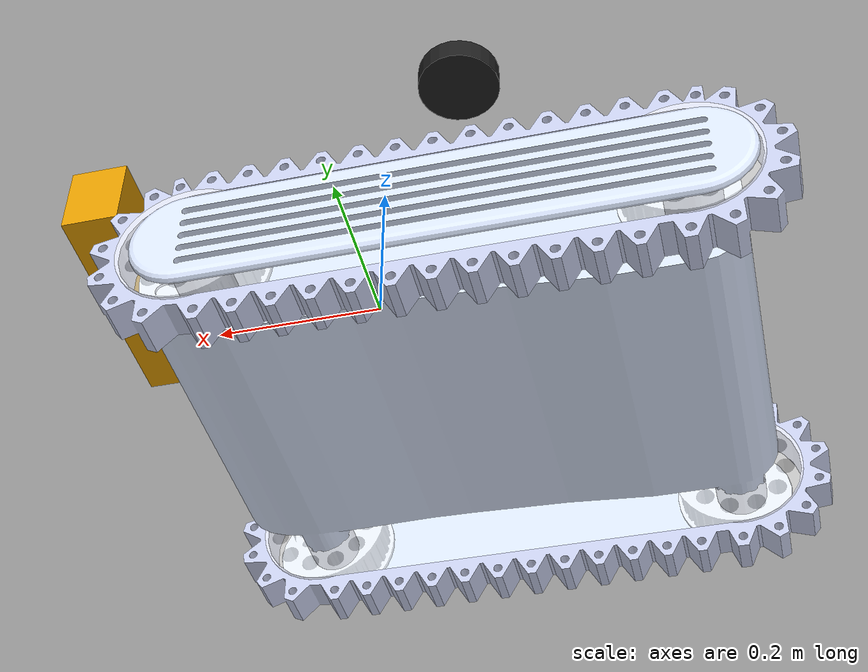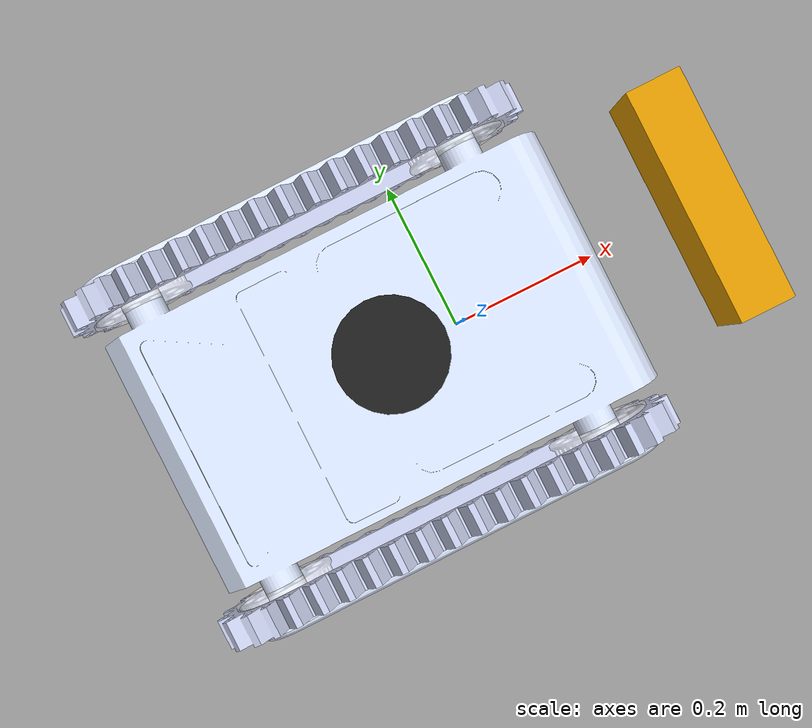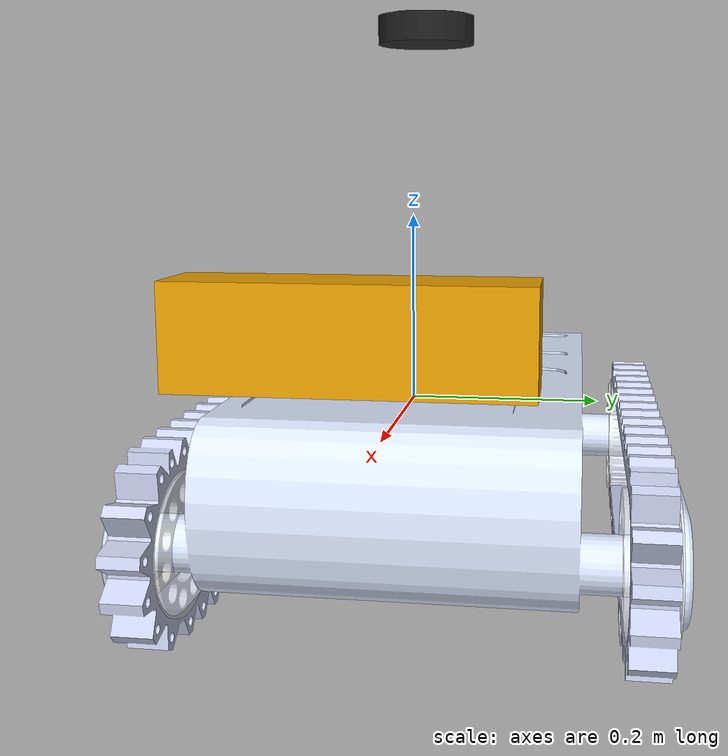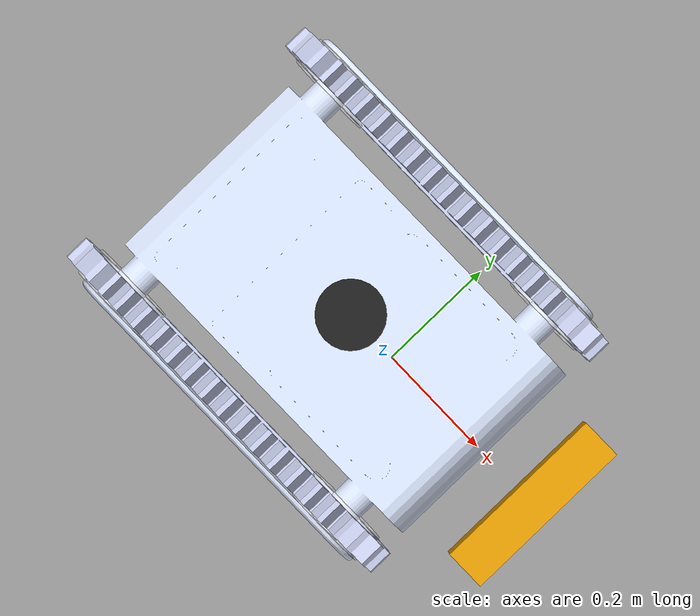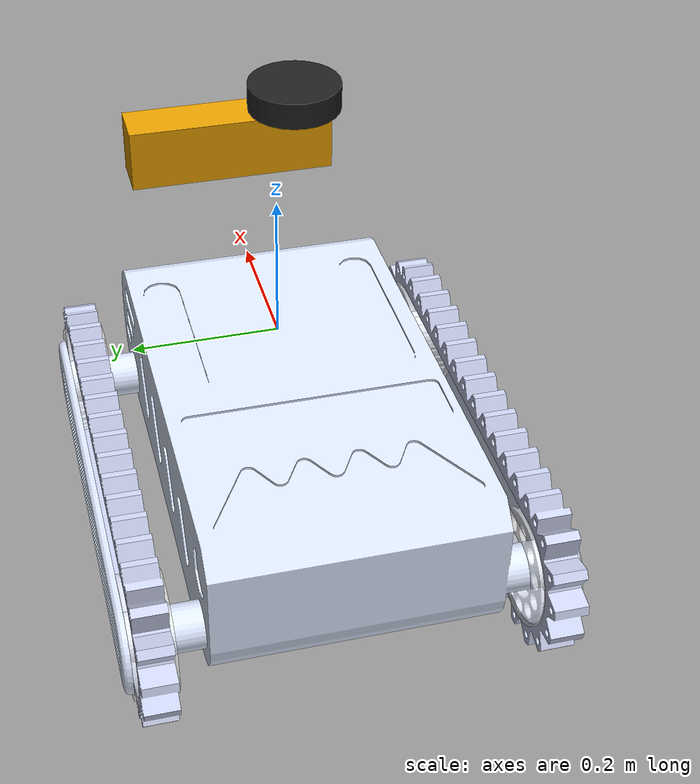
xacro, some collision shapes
<?xml version="1.0" encoding="utf-8"?>
<robot name="test_wheel" xmlns:xacro="http://ros.org/wiki/xacro">
  <xacro:arg name="laser_visual" default="false"/>
  <xacro:arg name="imu_visual"   default="false"/>

  <link name="base_footprint"/>

  <joint name="base_joint" type="fixed">
    <parent link="base_footprint"/>
    <child link="base_link"/>
    <origin xyz="0.17 0.0 0.010" rpy="0 0 0"/>
  </joint>

  <link
    name="base_link">
    <inertial>
      <origin
        xyz="-0.281319738122083 -0.0199999536533712 -0.106159055842674"
        rpy="0 0 0" />
      <mass
        value="12.7192621971354" />
      <inertia
        ixx="0.260102799764317"
        ixy="-0.000909028802490265"
        ixz="-0.0119468599271296"
        iyy="0.57529521161862"
        iyz="0.00212150730981038"
        izz="0.710489639266212" />
    </inertial>
    <visual>
      <origin
        xyz="0 0 0"
        rpy="0 0 0" />
      <geometry>
        <mesh
          filename="package://test_crawler/meshes/base_link.STL" />
      </geometry>
      <material
        name="">
        <color
          rgba="0.866666666666667 0.909803921568627 1 1" />
      </material>
    </visual>
    <collision>
      <origin
        xyz="0 0 0"
        rpy="0 0 0" />
      <geometry>
        <mesh
          filename="package://test_crawler/meshes/base_link.STL" />
      </geometry>
    </collision>
  </link>
  <link
    name="left_front_link">
    <inertial>
      <origin
        xyz="1.5691E-13 -0.022189 1.9851E-13"
        rpy="0 0 0" />
      <mass
        value="0.66982" />
      <inertia
        ixx="0.0011856"
        ixy="-1.9675E-17"
        ixz="5.9152E-18"
        iyy="0.0020612"
        iyz="-2.5304E-17"
        izz="0.0011856" />
    </inertial>
    <visual>
      <origin
        xyz="0 0 0"
        rpy="0 0 0" />
      <geometry>
        <mesh
          filename="package://test_crawler/meshes/left_front_link.STL" />
      </geometry>
      <material
        name="">
        <color
          rgba="1 1 1 0.5" />
      </material>
    </visual>
    <collision>
      <origin
        xyz="0 0 0"
        rpy="0 0 0" />
      <geometry>
        <mesh
          filename="package://test_crawler/meshes/left_front_link.STL" />
      </geometry>
    </collision>
  </link>
  <joint
    name="left_front_joint"
    type="continuous">
    <origin
      xyz="-0.043 0.275 -0.146000000000004"
      rpy="0 0 0" />
    <parent
      link="base_link" />
    <child
      link="left_front_link" />
    <axis
      xyz="0 1 0" />
  </joint>
  <link
    name="right_front_link">
    <inertial>
      <origin
        xyz="-0.010998 0.028811 0.0012827"
        rpy="0 0 0" />
      <mass
        value="0.66982" />
      <inertia
        ixx="0.0011856"
        ixy="-2.6967E-17"
        ixz="5.651E-18"
        iyy="0.0020612"
        iyz="-1.6955E-17"
        izz="0.0011856" />
    </inertial>
    <visual>
      <origin
        xyz="0 0 0"
        rpy="0 0 0" />
      <geometry>
        <mesh
          filename="package://test_crawler/meshes/right_front_link.STL" />
      </geometry>
      <material
        name="">
        <color
          rgba="1 1 1 0.5" />
      </material>
    </visual>
    <collision>
      <origin
        xyz="0 0 0"
        rpy="0 0 0" />
      <geometry>
        <mesh
          filename="package://test_crawler/meshes/right_front_link.STL" />
      </geometry>
    </collision>
  </link>
  <joint
    name="right_front_joint"
    type="continuous">
    <origin
      xyz="-0.0320015790095129 -0.277 -0.147282702389286"
      rpy="0 0 0" />
    <parent
      link="base_link" />
    <child
      link="right_front_link" />
    <axis
      xyz="0 1 0" />
  </joint>
  <link
    name="left_rare_link">
    <inertial>
      <origin
        xyz="2.0828E-13 -0.022189 1.4727E-13"
        rpy="0 0 0" />
      <mass
        value="0.66982" />
      <inertia
        ixx="0.0011856"
        ixy="-2.6335E-17"
        ixz="5.7661E-18"
        iyy="0.0020612"
        iyz="-1.8175E-17"
        izz="0.0011856" />
    </inertial>
    <visual>
      <origin
        xyz="0 0 0"
        rpy="0 0 0" />
      <geometry>
        <mesh
          filename="package://test_crawler/meshes/left_rare_link.STL" />
      </geometry>
      <material
        name="">
        <color
          rgba="1 1 1 0.5" />
      </material>
    </visual>
    <collision>
      <origin
        xyz="0 0 0"
        rpy="0 0 0" />
      <geometry>
        <mesh
          filename="package://test_crawler/meshes/left_rare_link.STL" />
      </geometry>
    </collision>
  </link>
  <joint
    name="left_rare_joint"
    type="continuous">
    <origin
      xyz="-0.553 0.275 -0.146000000000004"
      rpy="0 0 0" />
    <parent
      link="base_link" />
    <child
      link="left_rare_link" />
    <axis
      xyz="0 1 0" />
  </joint>
  <link
    name="right_rare_link">
    <inertial>
      <origin
        xyz="2.0817E-13 0.021811 1.4733E-13"
        rpy="0 0 0" />
      <mass
        value="0.66982" />
      <inertia
        ixx="0.0011856"
        ixy="-2.6202E-17"
        ixz="5.4236E-18"
        iyy="0.0020612"
        iyz="-1.8216E-17"
        izz="0.0011856" />
    </inertial>
    <visual>
      <origin
        xyz="0 0 0"
        rpy="0 0 0" />
      <geometry>
        <mesh
          filename="package://test_crawler/meshes/right_rare_link.STL" />
      </geometry>
      <material
        name="">
        <color
          rgba="1 1 1 0.5" />
      </material>
    </visual>
    <collision>
      <origin
        xyz="0 0 0"
        rpy="0 0 0" />
      <geometry>
        <mesh
          filename="package://test_crawler/meshes/right_rare_link.STL" />
      </geometry>
    </collision>
  </link>
  <joint
    name="right_rare_joint"
    type="continuous">
    <origin
      xyz="-0.553 -0.27 -0.146000000000004"
      rpy="0 0 0" />
    <parent
      link="base_link" />
    <child
      link="right_rare_link" />
    <axis
      xyz="0 1 0" />
  </joint>
  <link
    name="left_belt_link">
    <visual>
      <origin
        xyz="0 0 0"
        rpy="0 0 0" />
      <geometry>
        <mesh
          filename="package://test_crawler/meshes/left_belt_link.STL" />
      </geometry>
      <material
        name="">
        <color
          rgba="0.79216 0.81961 0.93333 1" />
      </material>
    </visual>
  </link>
  <joint
    name="left_belt_joint"
    type="fixed">
    <origin
      xyz="0 0 0"
      rpy="0 0 0" />
    <parent
      link="base_link" />
    <child
      link="left_belt_link" />
    <axis
      xyz="0 0 0" />
  </joint>
  <link
    name="right_belt_link">
    <visual>
      <origin
        xyz="0 0 0"
        rpy="0 0 0" />
      <geometry>
        <mesh
          filename="package://test_crawler/meshes/right_belt_link.STL" />
      </geometry>
      <material
        name="">
        <color
          rgba="0.79216 0.81961 0.93333 1" />
      </material>
    </visual>
  </link>
  <joint
    name="right_belt_joint"
    type="fixed">
    <origin
      xyz="0 0 0"
      rpy="0 0 0" />
    <parent
      link="base_link" />
    <child
      link="right_belt_link" />
    <axis
      xyz="0 0 0" />
  </joint>

    <link name="kinect_link">
        <visual>
            <origin xyz="-0.18 0 -0.08" rpy="0 0 1.5708"/>
            <geometry>
                <mesh filename="package://mbot_description/meshes/kinect.dae" />
            </geometry>
        </visual>
        <collision>
            <geometry>
                <box size="0.07 0.3 0.09"/>
            </geometry>
        </collision>
    </link>

    <joint name="kinect_joint" type="fixed">
        <origin xyz="0.15 0 0.11" rpy="0 0 0"/>
        <parent link="base_link"/>
        <child link="kinect_link"/>
    </joint>

    <joint name="kinect_optical_joint" type="fixed">
        <origin xyz="-0.18 0 -0.08" rpy="-1.5708 0 -1.5708"/>
        <parent link="kinect_link"/>
        <child link="kinect_frame_optical"/>
    </joint>

    <link name="kinect_frame_optical"/>

<joint name="scan_joint" type="fixed">
    <parent link="base_link"/>
    <child link="base_scan"/>
    <origin xyz="-0.282 0 0.402" rpy="0 0 0"/>
  </joint>

  <link name="base_scan">
    <visual>
      <origin xyz="0 0 0.0" rpy="0 0 0"/>
      <geometry>
        <mesh filename="package://multi_turtlebots_sim/turtlebot3_description/meshes/sensors/lds.stl" scale="0.001 0.001 0.001"/>
      </geometry>
      <material name="dark"/>
    </visual>

    <collision>
      <origin xyz="0.015 0 -0.0065" rpy="0 0 0"/>
      <geometry>
        <cylinder length="0.0315" radius="0.055"/>
      </geometry>
    </collision>

    <inertial>
      <mass value="0.114" />
      <origin xyz="0 0 0" />
      <inertia ixx="0.001" ixy="0.0" ixz="0.0"
               iyy="0.001" iyz="0.0"
               izz="0.001" />
    </inertial>
  </link>

  <joint name="imu_joint" type="fixed">
    <parent link="base_link"/>
    <child link="imu_link"/>
    <origin xyz="-0.032 0 0.068" rpy="0 0 0"/>
  </joint>

  <link name="imu_link"/>

  <transmission name="right_front_joint_transmssion">
    <type>transmission_interface/SimpleTransmission</type>
    <joint name="right_front_joint">
      <hardwareInterface>hardware_interface/VelocityJointInterface</hardwareInterface>
    </joint>
    <actuator name="right_front_joint_motor">
      <hardwareInterface>hardware_interface/VelocityJointInterface</hardwareInterface>
      <mechanicalReduction>1</mechanicalReduction>
    </actuator>
  </transmission>
  <transmission name="right_rear_joint_transmssion">
    <type>transmission_interface/SimpleTransmission</type>
    <joint name="right_rear_joint">
      <hardwareInterface>hardware_interface/EffortJointInterface</hardwareInterface>
    </joint>
    <actuator name="right_rear_joint_motor">
      <hardwareInterface>hardware_interface/EffortJointInterface</hardwareInterface>
      <mechanicalReduction>1</mechanicalReduction>
    </actuator>
  </transmission>
  <transmission name="left_front_joint_transmssion">
    <type>transmission_interface/SimpleTransmission</type>
    <joint name="left_front_joint">
      <hardwareInterface>hardware_interface/EffortJointInterface</hardwareInterface>
    </joint>
    <actuator name="left_front_joint_motor">
      <hardwareInterface>hardware_interface/EffortJointInterface</hardwareInterface>
      <mechanicalReduction>1</mechanicalReduction>
    </actuator>
  </transmission>
  <transmission name="left_rear_joint_transmssion">
    <type>transmission_interface/SimpleTransmission</type>
    <joint name="left_rear_joint">
      <hardwareInterface>hardware_interface/EffortJointInterface</hardwareInterface>
    </joint>
    <actuator name="left_rear_joint_motor">
      <hardwareInterface>hardware_interface/EffortJointInterface</hardwareInterface>
      <mechanicalReduction>1</mechanicalReduction>
    </actuator>
  </transmission>

    <gazebo>
        <plugin name="differential_drive_controller"
                filename="libgazebo_ros_diff_drive.so">
            <rosDebugLevel>Debug</rosDebugLevel>
            <publishWheelTF>false</publishWheelTF>
            <publishTf>1</publishTf>
            <publishWheelJointState>true</publishWheelJointState>
            <alwaysOn>true</alwaysOn>
            <updateRate>100.0</updateRate>
            <legacyMode>true</legacyMode>
            <leftJoint>left_front_joint</leftJoint>
            <rightJoint>right_front_joint</rightJoint>
            <wheelSeparation>0.51</wheelSeparation>
            <wheelDiameter>0.15</wheelDiameter>
            <broadcastTF>1</broadcastTF>
            <wheelTorque>30</wheelTorque>
            <wheelAcceleration>1.8</wheelAcceleration>
            <commandTopic>cmd_vel</commandTopic>
            <odometryFrame>odom</odometryFrame>
            <odometryTopic>odom</odometryTopic>
            <robotBaseFrame>base_footprint</robotBaseFrame>
        </plugin>
    </gazebo>

    <gazebo>
        <plugin name="differential_drive_controller"
                filename="libgazebo_ros_diff_drive.so">
            <rosDebugLevel>Debug</rosDebugLevel>
            <publishWheelTF>false</publishWheelTF>
            <publishTf>1</publishTf>
            <publishWheelJointState>true</publishWheelJointState>
            <alwaysOn>true</alwaysOn>
            <updateRate>100.0</updateRate>
            <legacyMode>true</legacyMode>
            <leftJoint>left_rare_joint</leftJoint>
            <rightJoint>right_rare_joint</rightJoint>
            <wheelSeparation>0.51</wheelSeparation>
            <wheelDiameter>0.15</wheelDiameter>
            <broadcastTF>1</broadcastTF>
            <wheelTorque>30</wheelTorque>
            <wheelAcceleration>1.8</wheelAcceleration>
            <commandTopic>cmd_vel</commandTopic>
            <odometryFrame>odom</odometryFrame>
            <odometryTopic>odom</odometryTopic>
            <robotBaseFrame>base_footprint</robotBaseFrame>
        </plugin>
    </gazebo>

    <gazebo reference="kinect_link">
        <sensor type="depth" name="kinect">
            <always_on>true</always_on>
            <update_rate>20.0</update_rate>
            <camera>
                <horizontal_fov>1.046</horizontal_fov>
                <image>
                    <format>R8G8B8</format>
                    <width>640</width>
                    <height>480</height>
                </image>
                <clip>
                    <near>0.05</near>
                    <far>8.0</far>
                </clip>
            </camera>
            <plugin name="kinect_controller" filename="libgazebo_ros_openni_kinect.so">
                <cameraName>kinect</cameraName>
                <alwaysOn>true</alwaysOn>
                <updateRate>10</updateRate>
                <imageTopicName>rgb/image_raw</imageTopicName>
                <depthImageTopicName>depth/image_raw</depthImageTopicName>
                <pointCloudTopicName>depth/points</pointCloudTopicName>
                <cameraInfoTopicName>rgb/camera_info</cameraInfoTopicName>
                <depthImageCameraInfoTopicName>depth/camera_info</depthImageCameraInfoTopicName>
                <frameName>kinect_frame_optical</frameName>
                <baseline>0.1</baseline>
                <distortion_k1>0.0</distortion_k1>
                <distortion_k2>0.0</distortion_k2>
                <distortion_k3>0.0</distortion_k3>
                <distortion_t1>0.0</distortion_t1>
                <distortion_t2>0.0</distortion_t2>
                <pointCloudCutoff>0.4</pointCloudCutoff>
            </plugin>
        </sensor>
    </gazebo>

 <gazebo reference="base_scan">
    <material>Gazebo/FlatBlack</material>
    <sensor type="ray" name="lds_lfcd_sensor">
      <pose>0 0 0 0 0 0</pose>
      <visualize>$(arg laser_visual)</visualize>
      <update_rate>5</update_rate>
      <ray>
        <scan>
          <horizontal>
            <samples>360</samples>
            <resolution>1</resolution>
            <min_angle>0.0</min_angle>
            <max_angle>6.28319</max_angle>
          </horizontal>
        </scan>
        <range>
          <min>0.120</min>
          <max>8.5</max>
          <resolution>0.015</resolution>
        </range>
        <noise>
          <type>gaussian</type>
          <mean>0.0</mean>
          <stddev>0.01</stddev>
        </noise>
      </ray>
      <plugin name="gazebo_ros_lds_lfcd_controller" filename="libgazebo_ros_laser.so">
        <topicName>scan</topicName>
        <frameName>base_scan</frameName>
      </plugin>
    </sensor>
  </gazebo>

  <gazebo reference="imu_link">
    <sensor type="imu" name="imu">
      <always_on>true</always_on>
      <visualize>$(arg imu_visual)</visualize>
    </sensor>
    <material>Gazebo/FlatBlack</material>
  </gazebo>
  <gazebo>
    <plugin name="imu_plugin" filename="libgazebo_ros_imu.so">
      <alwaysOn>true</alwaysOn>
      <bodyName>imu_link</bodyName>
      <frameName>imu_link</frameName>
      <topicName>imu</topicName>
      <serviceName>imu_service</serviceName>
      <gaussianNoise>0.0</gaussianNoise>
      <updateRate>200</updateRate>
      <imu>
        <noise>
          <type>gaussian</type>
          <rate>
            <mean>0.0</mean>
            <stddev>2e-4</stddev>
            <bias_mean>0.0000075</bias_mean>
            <bias_stddev>0.0000008</bias_stddev>
          </rate>
          <accel>
            <mean>0.0</mean>
            <stddev>1.7e-2</stddev>
            <bias_mean>0.1</bias_mean>
            <bias_stddev>0.001</bias_stddev>
          </accel>
        </noise>
      </imu>
    </plugin>
  </gazebo>

</robot>
